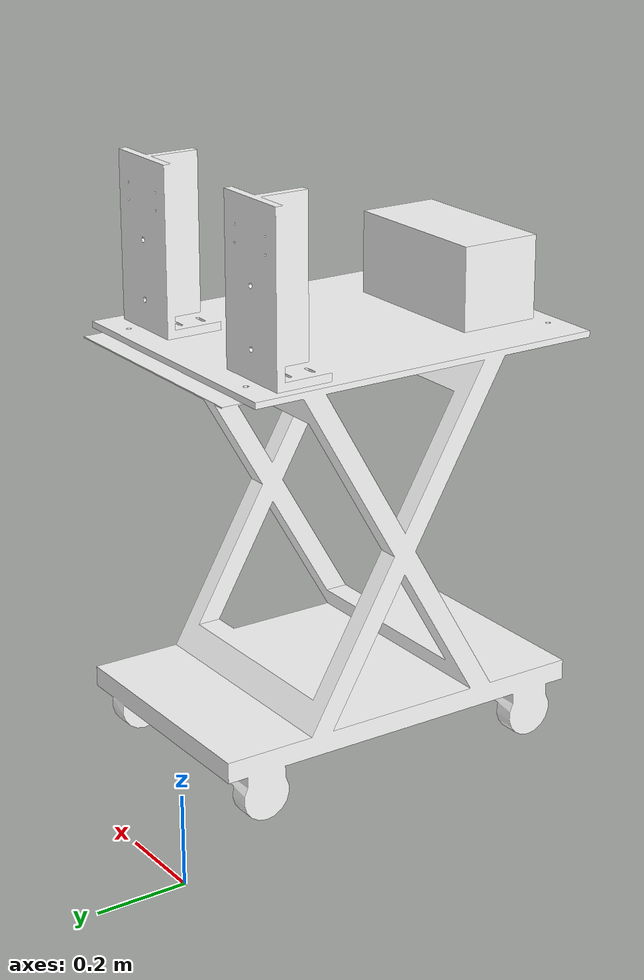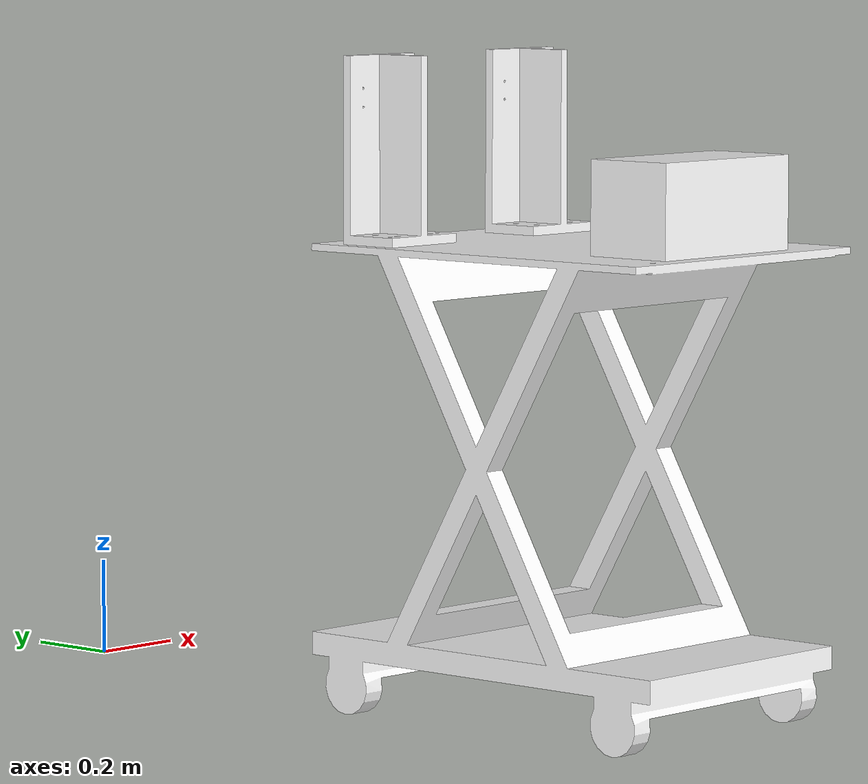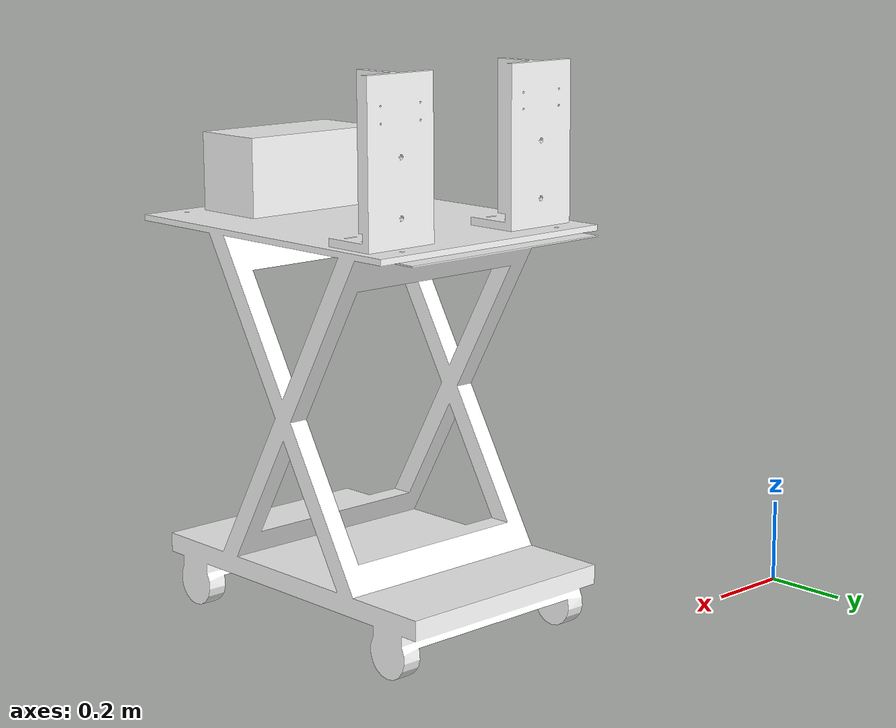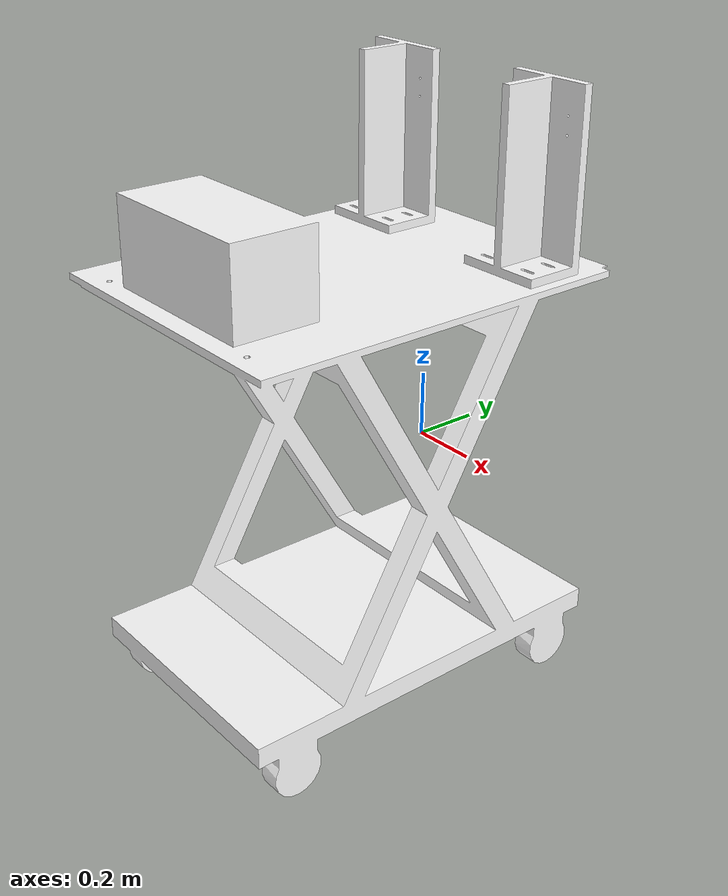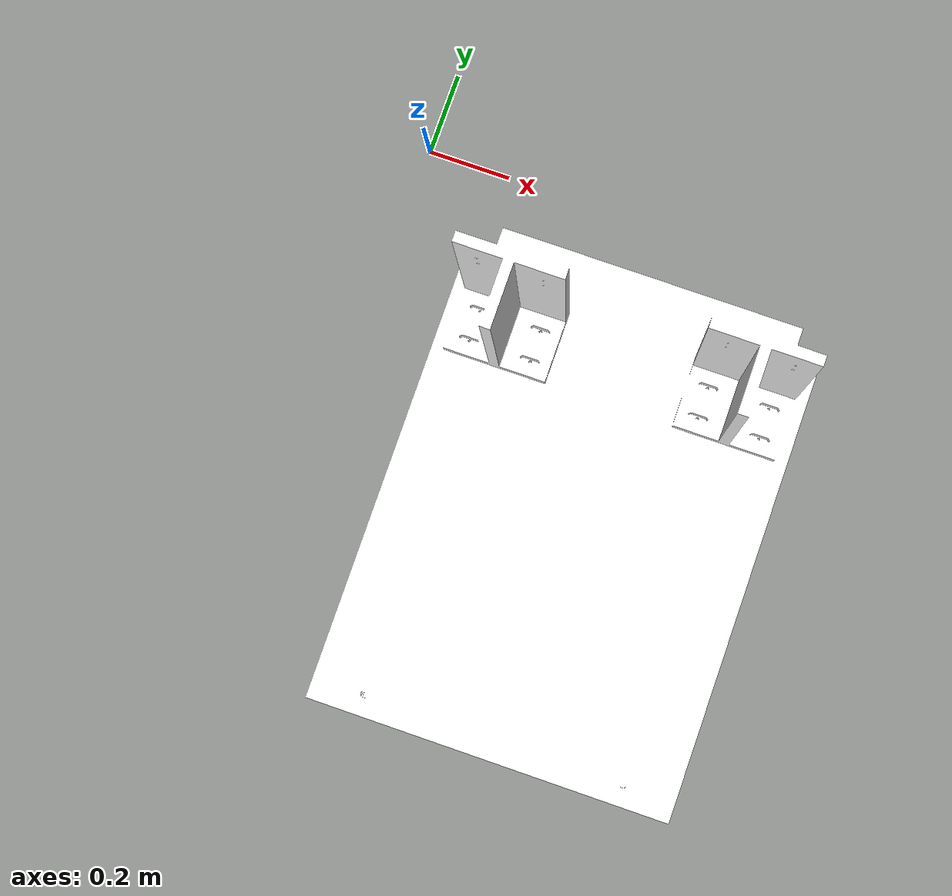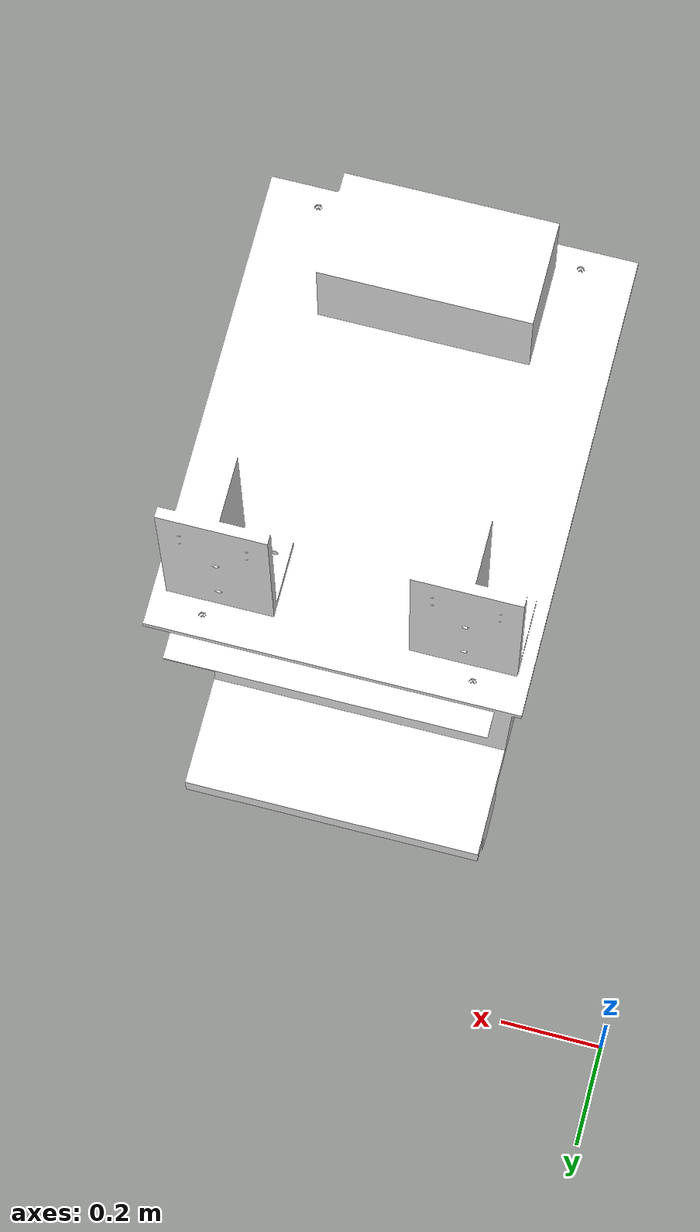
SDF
<sdf version='1.6'>
    <model name="pedestal">
    	 <link name="pedestal">
		    <visual name="visual">
		      <geometry>
				<mesh>
		            <uri>model://glovebox/meshes/Pedestal.stl</uri>
		            <scale>0.01 0.01 0.01</scale>
		        </mesh>
		      </geometry>
		      <material>
		    <script>
		      <uri>file://media/materials/scripts/gazebo.material</uri>
		      <name>Gazebo/Metal</name>
		    </script>
		    <ambient>1 1 1 1</ambient>
		      </material>
		    </visual>
		    <collision name="collision">
		      <geometry>
		        <mesh>
		            <uri>model://glovebox/meshes/Pedestal.stl</uri>
		            <scale>0.01 0.01 0.01</scale>
		        </mesh>
		      </geometry>
		    </collision>
	    </link>
      <pose frame=''>0 0 -0.01 0 0 0</pose>
      <static>true</static>
     </model>
</sdf>
